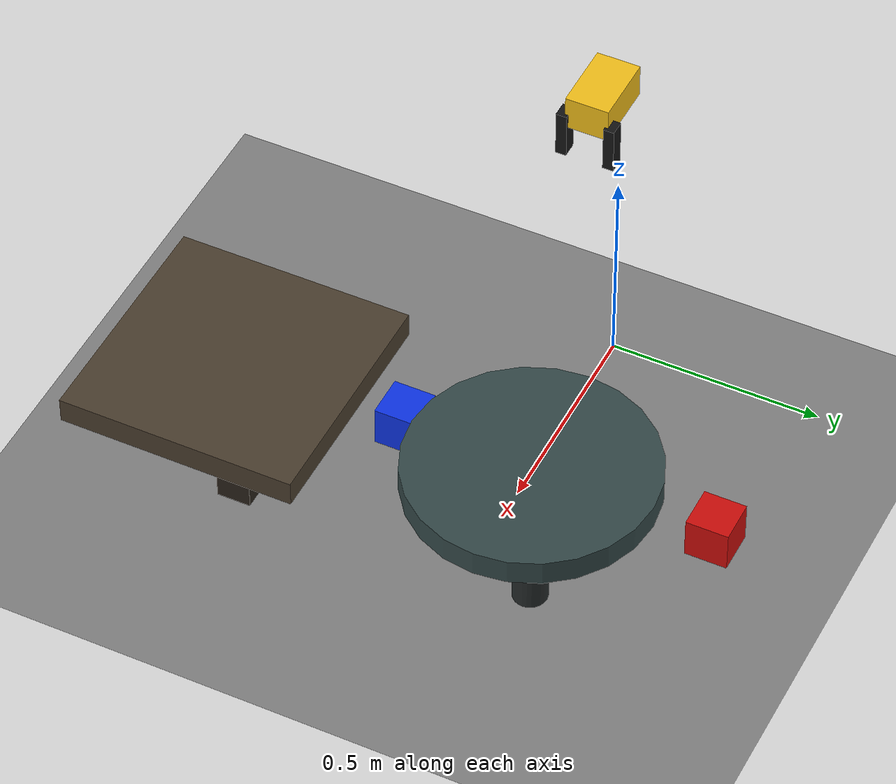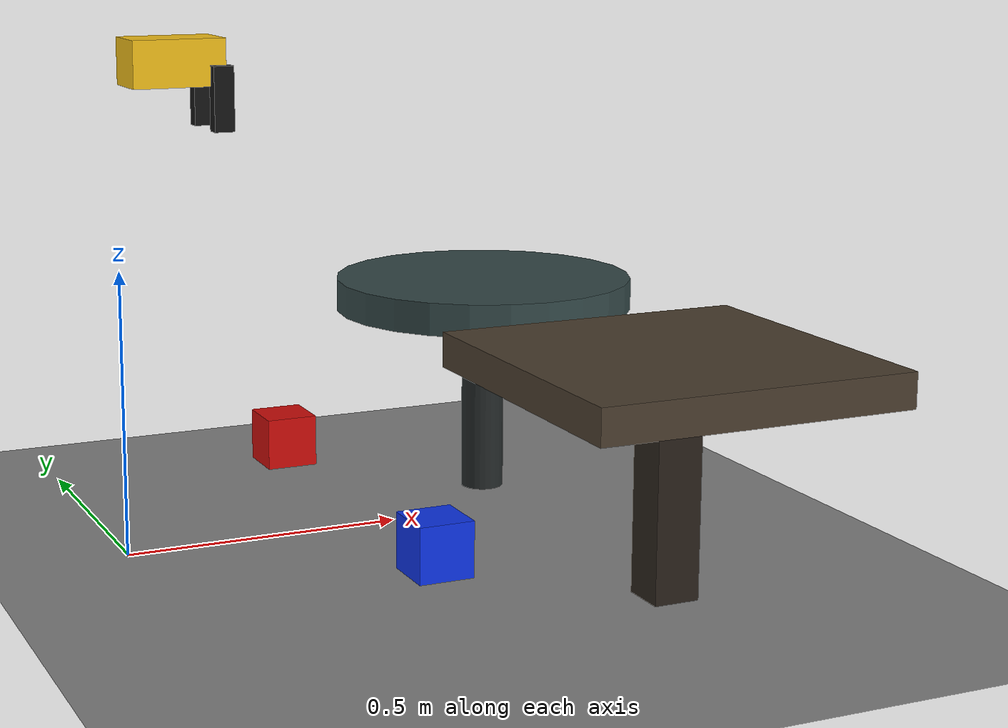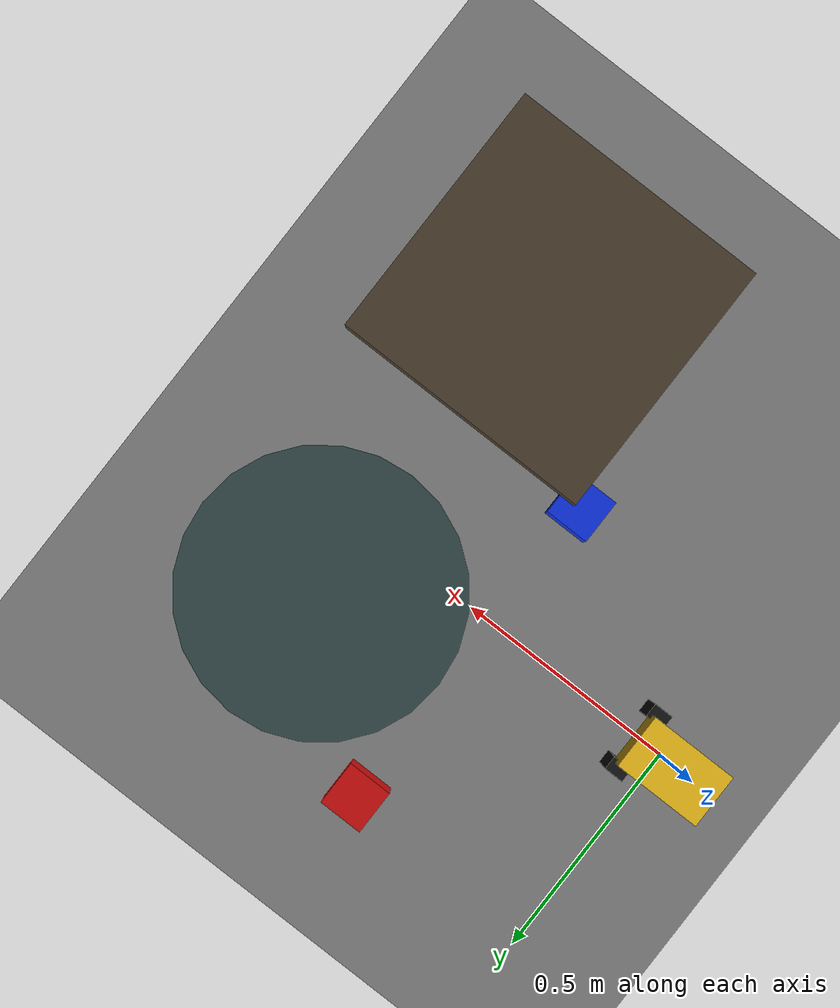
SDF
<?xml version="1.0"?>
<sdf version="1.9">
  <world name="default">
    <physics name="1ms" type="ignored">
      <max_step_size>0.001</max_step_size>
      <real_time_factor>1.0</real_time_factor>
    </physics>

    <plugin filename="gz-sim-physics-system" name="gz::sim::systems::Physics"/>
    <plugin filename="gz-sim-user-commands-system" name="gz::sim::systems::UserCommands"/>
    <plugin filename="gz-sim-scene-broadcaster-system" name="gz::sim::systems::SceneBroadcaster"/>

    <light name="sun" type="directional">
      <cast_shadows>true</cast_shadows>
      <pose>0 0 8 0 0 0</pose>
      <diffuse>0.8 0.8 0.8 1</diffuse>
      <specular>0.2 0.2 0.2 1</specular>
      <direction>-0.4 0.3 -1</direction>
    </light>

    <model name="ground_plane">
      <static>true</static>
      <link name="link">
        <collision name="collision">
          <geometry>
            <plane>
              <normal>0 0 1</normal>
              <size>8 8</size>
            </plane>
          </geometry>
        </collision>
        <visual name="visual">
          <geometry>
            <plane>
              <normal>0 0 1</normal>
              <size>8 8</size>
            </plane>
          </geometry>
          <material>
            <ambient>0.50 0.50 0.50 1</ambient>
            <diffuse>0.50 0.50 0.50 1</diffuse>
          </material>
        </visual>
      </link>
    </model>

    <model name="round_table">
      <static>true</static>
      <pose>0.75 0.15 0.38 0 0 0</pose>
      <link name="link">
        <collision name="top_collision">
          <geometry>
            <cylinder>
              <radius>0.28</radius>
              <length>0.06</length>
            </cylinder>
          </geometry>
        </collision>
        <visual name="top_visual">
          <geometry>
            <cylinder>
              <radius>0.28</radius>
              <length>0.06</length>
            </cylinder>
          </geometry>
          <material>
            <ambient>0.20 0.28 0.28 1</ambient>
            <diffuse>0.20 0.28 0.28 1</diffuse>
          </material>
        </visual>
        <collision name="leg_collision">
          <pose>0 0 -0.20 0 0 0</pose>
          <geometry>
            <cylinder>
              <radius>0.04</radius>
              <length>0.40</length>
            </cylinder>
          </geometry>
        </collision>
        <visual name="leg_visual">
          <pose>0 0 -0.20 0 0 0</pose>
          <geometry>
            <cylinder>
              <radius>0.04</radius>
              <length>0.40</length>
            </cylinder>
          </geometry>
          <material>
            <ambient>0.14 0.16 0.16 1</ambient>
            <diffuse>0.14 0.16 0.16 1</diffuse>
          </material>
        </visual>
      </link>
    </model>

    <model name="square_table">
      <static>true</static>
      <pose>0.75 -0.55 0.38 0 0 0</pose>
      <link name="link">
        <collision name="top_collision">
          <geometry>
            <box>
              <size>0.55 0.55 0.06</size>
            </box>
          </geometry>
        </collision>
        <visual name="top_visual">
          <geometry>
            <box>
              <size>0.55 0.55 0.06</size>
            </box>
          </geometry>
          <material>
            <ambient>0.29 0.24 0.18 1</ambient>
            <diffuse>0.29 0.24 0.18 1</diffuse>
          </material>
        </visual>
        <collision name="leg_collision">
          <pose>0 0 -0.20 0 0 0</pose>
          <geometry>
            <box>
              <size>0.08 0.08 0.40</size>
            </box>
          </geometry>
        </collision>
        <visual name="leg_visual">
          <pose>0 0 -0.20 0 0 0</pose>
          <geometry>
            <box>
              <size>0.08 0.08 0.40</size>
            </box>
          </geometry>
          <material>
            <ambient>0.16 0.13 0.10 1</ambient>
            <diffuse>0.16 0.13 0.10 1</diffuse>
          </material>
        </visual>
      </link>
    </model>

    <model name="red_box">
      <pose>0.45 0.45 0.05 0 0 0</pose>
      <link name="link">
        <inertial>
          <mass>0.1</mass>
          <inertia>
            <ixx>0.0002</ixx>
            <iyy>0.0002</iyy>
            <izz>0.0002</izz>
          </inertia>
        </inertial>
        <collision name="collision">
          <geometry>
            <box>
              <size>0.10 0.10 0.10</size>
            </box>
          </geometry>
        </collision>
        <visual name="visual">
          <geometry>
            <box>
              <size>0.10 0.10 0.10</size>
            </box>
          </geometry>
          <material>
            <ambient>0.8 0.05 0.04 1</ambient>
            <diffuse>0.8 0.05 0.04 1</diffuse>
          </material>
        </visual>
      </link>
    </model>

    <model name="blue_box">
      <pose>0.45 -0.30 0.05 0 0 0</pose>
      <link name="link">
        <inertial>
          <mass>0.1</mass>
          <inertia>
            <ixx>0.0002</ixx>
            <iyy>0.0002</iyy>
            <izz>0.0002</izz>
          </inertia>
        </inertial>
        <collision name="collision">
          <geometry>
            <box>
              <size>0.10 0.10 0.10</size>
            </box>
          </geometry>
        </collision>
        <visual name="visual">
          <geometry>
            <box>
              <size>0.10 0.10 0.10</size>
            </box>
          </geometry>
          <material>
            <ambient>0.05 0.20 0.9 1</ambient>
            <diffuse>0.05 0.20 0.9 1</diffuse>
          </material>
        </visual>
      </link>
    </model>

    <model name="symbolic_arm">
      <static>false</static>
      <pose>0.10 0.00 0.85 0 0 0</pose>
      <link name="link">
        <gravity>false</gravity>
        <inertial>
          <mass>0.1</mass>
          <inertia>
            <ixx>0.0002</ixx>
            <iyy>0.0002</iyy>
            <izz>0.0002</izz>
          </inertia>
        </inertial>
        <visual name="palm_visual">
          <geometry>
            <box>
              <size>0.16 0.10 0.08</size>
            </box>
          </geometry>
          <material>
            <ambient>0.95 0.75 0.10 1</ambient>
            <diffuse>0.95 0.75 0.10 1</diffuse>
          </material>
        </visual>
        <visual name="left_finger_visual">
          <pose>0.07 0.055 -0.06 0 0 0</pose>
          <geometry>
            <box>
              <size>0.035 0.025 0.11</size>
            </box>
          </geometry>
          <material>
            <ambient>0.08 0.08 0.08 1</ambient>
            <diffuse>0.08 0.08 0.08 1</diffuse>
          </material>
        </visual>
        <visual name="right_finger_visual">
          <pose>0.07 -0.055 -0.06 0 0 0</pose>
          <geometry>
            <box>
              <size>0.035 0.025 0.11</size>
            </box>
          </geometry>
          <material>
            <ambient>0.08 0.08 0.08 1</ambient>
            <diffuse>0.08 0.08 0.08 1</diffuse>
          </material>
        </visual>
      </link>
    </model>
  </world>
</sdf>
